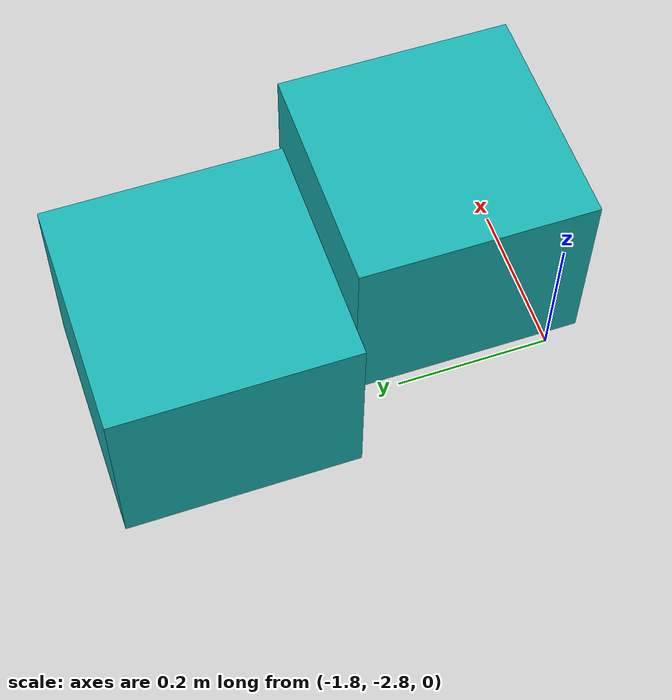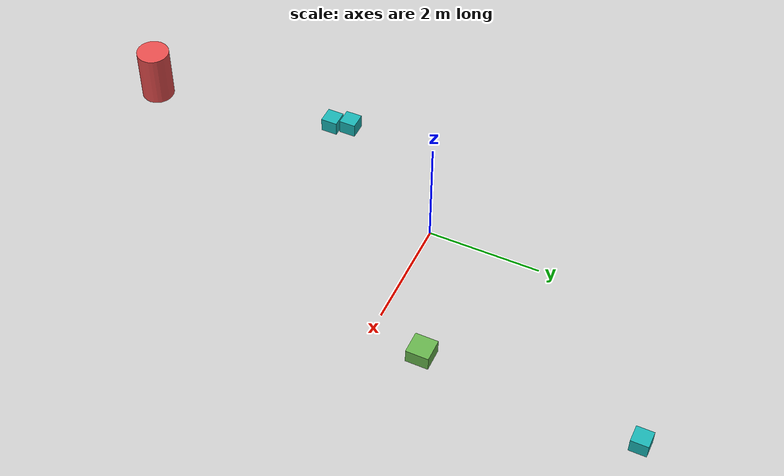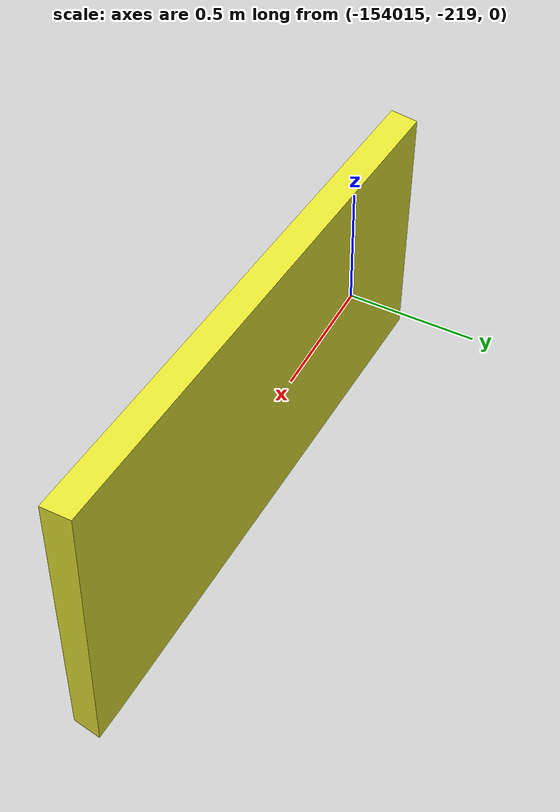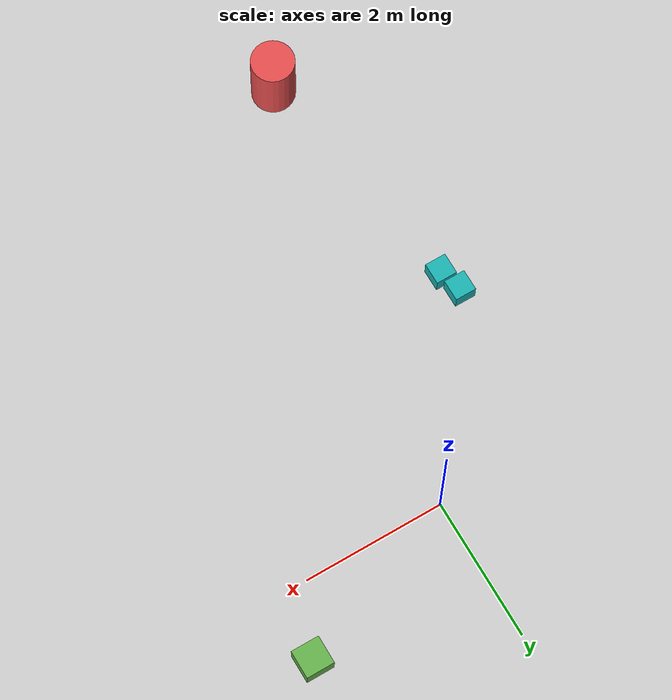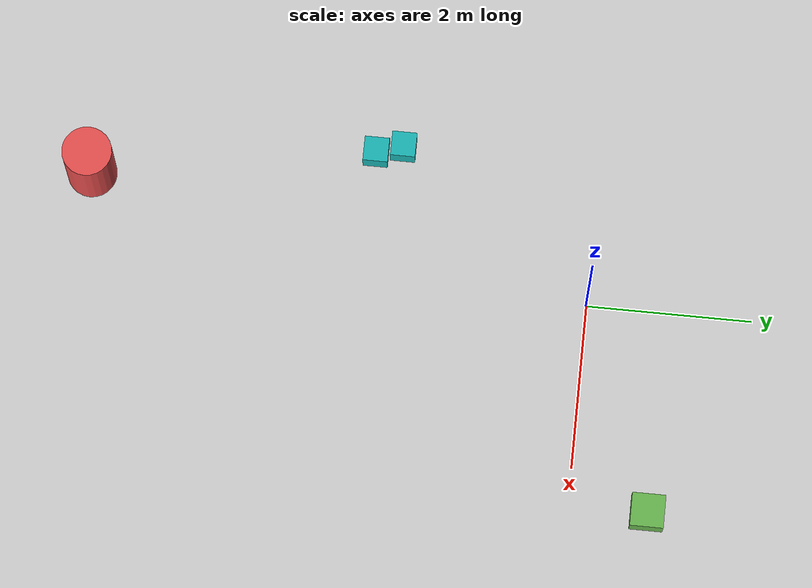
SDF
<sdf version="1.7">
 <world name="default">
  <scene><ambient>0.4 0.4 0.4 1</ambient><background>0.7 0.7 0.7 1</background><shadows>1</shadows></scene>
  <light name="sun" type="directional">
   <pose>0 0 10 0 -0 0</pose>
   <diffuse>0.8 0.8 0.8 1</diffuse>
   <specular>0.2 0.2 0.2 1</specular>
   <attenuation>
    <range>1000</range>
    <constant>0.9</constant>
    <linear>0.01</linear>
    <quadratic>0.001</quadratic>
   </attenuation>
   <direction>-0.5 0.1 -0.9</direction>
   <spot><inner_angle>0</inner_angle><outer_angle>0</outer_angle><falloff>0</falloff></spot>
  </light>
  <model name="ground_plane">
   <static>1</static>
   <link name="link">
    <collision name="collision">
     <geometry><plane><normal>0 0 1</normal><size>100 100</size></plane></geometry>
     <surface><friction><ode><mu>100</mu><mu2>50</mu2></ode></friction></surface>
    </collision>
    <visual name="visual">
     <cast_shadows>0</cast_shadows>
     <geometry><plane><normal>0 0 1</normal><size>100 100</size></plane></geometry>
     <material>
      <script><uri>file://media/materials/scripts/gazebo.material</uri><name>Gazebo/Grey</name></script>
     </material>
    </visual>
   </link>
  </model>
  <physics name="default_physics" default="0" type="ode">
   <real_time_update_rate>5e+06</real_time_update_rate>
   <max_step_size>0.05</max_step_size>
   <real_time_factor>0</real_time_factor>
   <ode>
    <solver>
     <type>quick</type>
     <iters>150</iters>
     <precon_iters>0</precon_iters>
     <sor>1.4</sor>
     <use_dynamic_moi_rescaling>1</use_dynamic_moi_rescaling>
    </solver>
    <constraints>
     <cfm>1e-05</cfm>
     <erp>0.2</erp>
     <contact_max_correcting_vel>2000</contact_max_correcting_vel>
     <contact_surface_layer>0.01</contact_surface_layer>
    </constraints>
   </ode>
  </physics>
  <gravity>0 0 -9.8</gravity>
  <magnetic_field>6e-06 2.3e-05 -4.2e-05</magnetic_field>
  <atmosphere type="adiabatic"/>
  <spherical_coordinates>
   <surface_model>EARTH_WGS84</surface_model>
   <latitude_deg>0</latitude_deg>
   <longitude_deg>0</longitude_deg>
   <elevation>0</elevation>
   <heading_deg>0</heading_deg>
  </spherical_coordinates>
  <audio><device>default</device></audio>
  <model name="wooden_wall_2_0">
   <link name="link_1">
    <inertial>
     <mass>1</mass>
     <inertia>
      <ixx>0.166667</ixx>
      <ixy>0</ixy>
      <ixz>0</ixz>
      <iyy>0.166667</iyy>
      <iyz>0</iyz>
      <izz>0.166667</izz>
     </inertia>
    </inertial>
    <visual name="visual">
     <geometry><box><size>2 0.1 1</size></box></geometry>
     <material>
      <lighting>1</lighting>
      <script><uri>file://media/materials/scripts/gazebo.material</uri><name>Gazebo/Grey</name></script>
      <shader type="pixel"><normal_map>__default__</normal_map></shader>
      <ambient>0.9 0.9 0.2 1</ambient>
      <diffuse>0.7 0.7 0.7 1</diffuse>
      <specular>0.01 0.01 0.01 1</specular>
      <emissive>0 0 0 1</emissive>
     </material>
    </visual>
    <collision name="collision">
     <geometry><box><size>2 0.1 1</size></box></geometry>
     <surface>
      <friction>
       <ode><mu>1</mu><mu2>1</mu2><fdir1>0 0 0</fdir1><slip1>0</slip1><slip2>0</slip2></ode>
       <torsional>
        <coefficient>1</coefficient>
        <patch_radius>0</patch_radius>
        <surface_radius>0</surface_radius>
        <use_patch_radius>1</use_patch_radius>
        <ode><slip>0</slip></ode>
       </torsional>
      </friction>
      <bounce><restitution_coefficient>0</restitution_coefficient><threshold>1e+06</threshold></bounce>
      <contact>
       <collide_without_contact>0</collide_without_contact>
       <collide_without_contact_bitmask>1</collide_without_contact_bitmask>
       <collide_bitmask>1</collide_bitmask>
       <ode>
        <soft_cfm>0</soft_cfm>
        <soft_erp>0.2</soft_erp>
        <kp>1e+13</kp>
        <kd>1</kd>
        <max_vel>0.01</max_vel>
        <min_depth>0</min_depth>
       </ode>
       <bullet>
        <split_impulse>1</split_impulse>
        <split_impulse_penetration_threshold>-0.01</split_impulse_penetration_threshold>
        <soft_cfm>0</soft_cfm>
        <soft_erp>0.2</soft_erp>
        <kp>1e+13</kp>
        <kd>1</kd>
       </bullet>
      </contact>
     </surface>
    </collision>
   </link>
   <static>0</static>
   <pose>-154014 -218.862 0.449584 0.001475 -0.052697 -0.026891</pose>
  </model>
  <model name="obs_0">
   <link name="link">
    <inertial>
     <mass>100</mass>
     <inertia><ixx>1.5</ixx><ixy>0</ixy><ixz>0</ixz><iyy>1.5</iyy><iyz>0</iyz><izz>1.5</izz></inertia>
    </inertial>
    <visual name="visual">
     <geometry><box><size>0.3 0.3 0.5</size></box></geometry>
     <material>
      <script><name>Gazebo/Grey</name><uri>file://media/materials/scripts/gazebo.material</uri></script>
      <shader type="pixel"><normal_map>__default__</normal_map></shader>
      <ambient>0.1 0.7 0.7 1</ambient>
      <diffuse>0.7 0.7 0.7 1</diffuse>
      <specular>0.01 0.01 0.01 1</specular>
      <emissive>0 0 0 1</emissive>
     </material>
    </visual>
    <collision name="collision">
     <geometry><box><size>0.3 0.3 0.5</size></box></geometry>
     <surface>
      <friction>
       <ode><mu>1</mu><mu2>1</mu2><fdir1>0 0 0</fdir1><slip1>0</slip1><slip2>0</slip2></ode>
       <torsional>
        <coefficient>1</coefficient>
        <patch_radius>0</patch_radius>
        <surface_radius>0</surface_radius>
        <use_patch_radius>1</use_patch_radius>
        <ode><slip>0</slip></ode>
       </torsional>
      </friction>
      <bounce><restitution_coefficient>0</restitution_coefficient><threshold>1e+06</threshold></bounce>
      <contact>
       <collide_without_contact>0</collide_without_contact>
       <collide_without_contact_bitmask>1</collide_without_contact_bitmask>
       <collide_bitmask>1</collide_bitmask>
       <ode>
        <soft_cfm>0</soft_cfm>
        <soft_erp>0.2</soft_erp>
        <kp>1e+13</kp>
        <kd>1</kd>
        <max_vel>0.01</max_vel>
        <min_depth>0</min_depth>
       </ode>
       <bullet>
        <split_impulse>1</split_impulse>
        <split_impulse_penetration_threshold>-0.01</split_impulse_penetration_threshold>
        <soft_cfm>0</soft_cfm>
        <soft_erp>0.2</soft_erp>
        <kp>1e+13</kp>
        <kd>1</kd>
       </bullet>
      </contact>
     </surface>
    </collision>
   </link>
   <static>1</static>
   <pose>2.5895 4.66293 0 0 -0 0</pose>
  </model>
  <model name="obs_1">
   <link name="link">
    <inertial>
     <mass>100</mass>
     <inertia><ixx>1.5</ixx><ixy>0</ixy><ixz>0</ixz><iyy>1.5</iyy><iyz>0</iyz><izz>1.5</izz></inertia>
    </inertial>
    <visual name="visual">
     <geometry><box><size>0.4 0.4 0.5</size></box></geometry>
     <material>
      <script><name>Gazebo/Grey</name><uri>file://media/materials/scripts/gazebo.material</uri></script>
      <shader type="pixel"><normal_map>__default__</normal_map></shader>
      <ambient>0.4 0.7 0.3 1</ambient>
      <diffuse>0.7 0.7 0.7 1</diffuse>
      <specular>0.01 0.01 0.01 1</specular>
      <emissive>0 0 0 1</emissive>
     </material>
    </visual>
    <collision name="collision">
     <geometry><box><size>0.4 0.4 0.5</size></box></geometry>
     <surface>
      <friction>
       <ode><mu>1</mu><mu2>1</mu2><fdir1>0 0 0</fdir1><slip1>0</slip1><slip2>0</slip2></ode>
       <torsional>
        <coefficient>1</coefficient>
        <patch_radius>0</patch_radius>
        <surface_radius>0</surface_radius>
        <use_patch_radius>1</use_patch_radius>
        <ode><slip>0</slip></ode>
       </torsional>
      </friction>
      <bounce><restitution_coefficient>0</restitution_coefficient><threshold>1e+06</threshold></bounce>
      <contact>
       <collide_without_contact>0</collide_without_contact>
       <collide_without_contact_bitmask>1</collide_without_contact_bitmask>
       <collide_bitmask>1</collide_bitmask>
       <ode>
        <soft_cfm>0</soft_cfm>
        <soft_erp>0.2</soft_erp>
        <kp>1e+13</kp>
        <kd>1</kd>
        <max_vel>0.01</max_vel>
        <min_depth>0</min_depth>
       </ode>
       <bullet>
        <split_impulse>1</split_impulse>
        <split_impulse_penetration_threshold>-0.01</split_impulse_penetration_threshold>
        <soft_cfm>0</soft_cfm>
        <soft_erp>0.2</soft_erp>
        <kp>1e+13</kp>
        <kd>1</kd>
       </bullet>
      </contact>
     </surface>
    </collision>
   </link>
   <static>1</static>
   <pose>2.46181 0.943394 0 0 -0 0</pose>
  </model>
  <model name="obs_2">
   <model name="unit_box_0.3_heavy">
    <link name="link">
     <inertial>
      <mass>100</mass>
      <inertia><ixx>1.5</ixx><ixy>0</ixy><ixz>0</ixz><iyy>1.5</iyy><iyz>0</iyz><izz>1.5</izz></inertia>
     </inertial>
     <visual name="visual">
      <geometry><box><size>0.3 0.3 0.5</size></box></geometry>
      <material>
       <script><name>Gazebo/Grey</name><uri>file://media/materials/scripts/gazebo.material</uri></script>
       <shader type="pixel"><normal_map>__default__</normal_map></shader>
       <ambient>0.1 0.7 0.7 1</ambient>
       <diffuse>0.7 0.7 0.7 1</diffuse>
       <specular>0.01 0.01 0.01 1</specular>
       <emissive>0 0 0 1</emissive>
      </material>
     </visual>
     <collision name="collision">
      <geometry><box><size>0.3 0.3 0.5</size></box></geometry>
      <surface>
       <friction>
        <ode><mu>1</mu><mu2>1</mu2><fdir1>0 0 0</fdir1><slip1>0</slip1><slip2>0</slip2></ode>
        <torsional>
         <coefficient>1</coefficient>
         <patch_radius>0</patch_radius>
         <surface_radius>0</surface_radius>
         <use_patch_radius>1</use_patch_radius>
         <ode><slip>0</slip></ode>
        </torsional>
       </friction>
       <bounce><restitution_coefficient>0</restitution_coefficient><threshold>1e+06</threshold></bounce>
       <contact>
        <collide_without_contact>0</collide_without_contact>
        <collide_without_contact_bitmask>1</collide_without_contact_bitmask>
        <collide_bitmask>1</collide_bitmask>
        <ode>
         <soft_cfm>0</soft_cfm>
         <soft_erp>0.2</soft_erp>
         <kp>1e+13</kp>
         <kd>1</kd>
         <max_vel>0.01</max_vel>
         <min_depth>0</min_depth>
        </ode>
        <bullet>
         <split_impulse>1</split_impulse>
         <split_impulse_penetration_threshold>-0.01</split_impulse_penetration_threshold>
         <soft_cfm>0</soft_cfm>
         <soft_erp>0.2</soft_erp>
         <kp>1e+13</kp>
         <kd>1</kd>
        </bullet>
       </contact>
      </surface>
     </collision>
    </link>
    <static>1</static>
    <pose>0.047774 -0.16242 0 0 -0 0</pose>
   </model>
   <model name="unit_box_0.3_heavy_0">
    <link name="link">
     <inertial>
      <mass>100</mass>
      <inertia><ixx>1.5</ixx><ixy>0</ixy><ixz>0</ixz><iyy>1.5</iyy><iyz>0</iyz><izz>1.5</izz></inertia>
     </inertial>
     <visual name="visual">
      <geometry><box><size>0.3 0.3 0.5</size></box></geometry>
      <material>
       <script><name>Gazebo/Grey</name><uri>file://media/materials/scripts/gazebo.material</uri></script>
       <shader type="pixel"><normal_map>__default__</normal_map></shader>
       <ambient>0.1 0.7 0.7 1</ambient>
       <diffuse>0.7 0.7 0.7 1</diffuse>
       <specular>0.01 0.01 0.01 1</specular>
       <emissive>0 0 0 1</emissive>
      </material>
     </visual>
     <collision name="collision">
      <geometry><box><size>0.3 0.3 0.5</size></box></geometry>
      <surface>
       <friction>
        <ode><mu>1</mu><mu2>1</mu2><fdir1>0 0 0</fdir1><slip1>0</slip1><slip2>0</slip2></ode>
        <torsional>
         <coefficient>1</coefficient>
         <patch_radius>0</patch_radius>
         <surface_radius>0</surface_radius>
         <use_patch_radius>1</use_patch_radius>
         <ode><slip>0</slip></ode>
        </torsional>
       </friction>
       <bounce><restitution_coefficient>0</restitution_coefficient><threshold>1e+06</threshold></bounce>
       <contact>
        <collide_without_contact>0</collide_without_contact>
        <collide_without_contact_bitmask>1</collide_without_contact_bitmask>
        <collide_bitmask>1</collide_bitmask>
        <ode>
         <soft_cfm>0</soft_cfm>
         <soft_erp>0.2</soft_erp>
         <kp>1e+13</kp>
         <kd>1</kd>
         <max_vel>0.01</max_vel>
         <min_depth>0</min_depth>
        </ode>
        <bullet>
         <split_impulse>1</split_impulse>
         <split_impulse_penetration_threshold>-0.01</split_impulse_penetration_threshold>
         <soft_cfm>0</soft_cfm>
         <soft_erp>0.2</soft_erp>
         <kp>1e+13</kp>
         <kd>1</kd>
        </bullet>
       </contact>
      </surface>
     </collision>
    </link>
    <static>1</static>
    <pose>-0.047767 0.162425 0 0 -0 0</pose>
   </model>
   <static>0</static>
   <pose>-1.6845 -2.5343 0 0 -0 0</pose>
  </model>
  <model name="obs_3">
   <link name="link_0">
    <inertial>
     <mass>100</mass>
     <inertia><ixx>10.5833</ixx><ixy>0</ixy><ixz>0</ixz><iyy>10.5833</iyy><iyz>0</iyz><izz>4.5</izz></inertia>
    </inertial>
    <visual name="visual">
     <geometry><cylinder><radius>0.3</radius><length>1</length></cylinder></geometry>
     <material>
      <lighting>1</lighting>
      <script><uri>file://media/materials/scripts/gazebo.material</uri><name>Gazebo/Grey</name></script>
      <shader type="pixel"><normal_map>__default__</normal_map></shader>
      <ambient>0.9 0.3 0.3 1</ambient>
      <diffuse>0.7 0.7 0.7 1</diffuse>
      <specular>0.01 0.01 0.01 1</specular>
      <emissive>0 0 0 1</emissive>
     </material>
    </visual>
    <collision name="collision">
     <max_contacts>30</max_contacts>
     <geometry><cylinder><radius>0.3</radius><length>1</length></cylinder></geometry>
     <surface>
      <friction>
       <ode><mu>1</mu><mu2>1</mu2><fdir1>0 0 0</fdir1><slip1>0</slip1><slip2>0</slip2></ode>
       <torsional>
        <coefficient>1</coefficient>
        <patch_radius>0</patch_radius>
        <surface_radius>0</surface_radius>
        <use_patch_radius>1</use_patch_radius>
        <ode><slip>0</slip></ode>
       </torsional>
      </friction>
      <bounce><restitution_coefficient>0</restitution_coefficient><threshold>1e+06</threshold></bounce>
      <contact>
       <collide_without_contact>0</collide_without_contact>
       <collide_without_contact_bitmask>1</collide_without_contact_bitmask>
       <collide_bitmask>1</collide_bitmask>
       <ode>
        <soft_cfm>0</soft_cfm>
        <soft_erp>0.2</soft_erp>
        <kp>1e+13</kp>
        <kd>1</kd>
        <max_vel>0.01</max_vel>
        <min_depth>0</min_depth>
       </ode>
       <bullet>
        <split_impulse>1</split_impulse>
        <split_impulse_penetration_threshold>-0.01</split_impulse_penetration_threshold>
        <soft_cfm>0</soft_cfm>
        <soft_erp>0.2</soft_erp>
        <kp>1e+13</kp>
        <kd>1</kd>
       </bullet>
      </contact>
     </surface>
    </collision>
   </link>
   <static>1</static>
   <pose>-1.06621 -6.09421 0.5 0 -0 0</pose>
  </model>
 </world>
</sdf>
